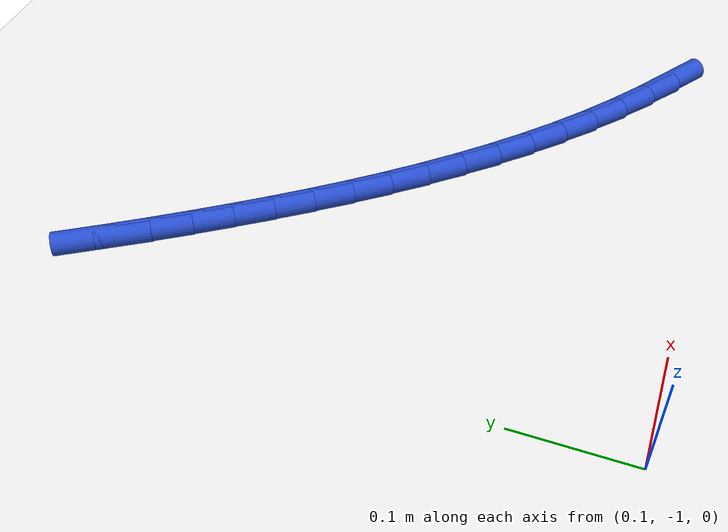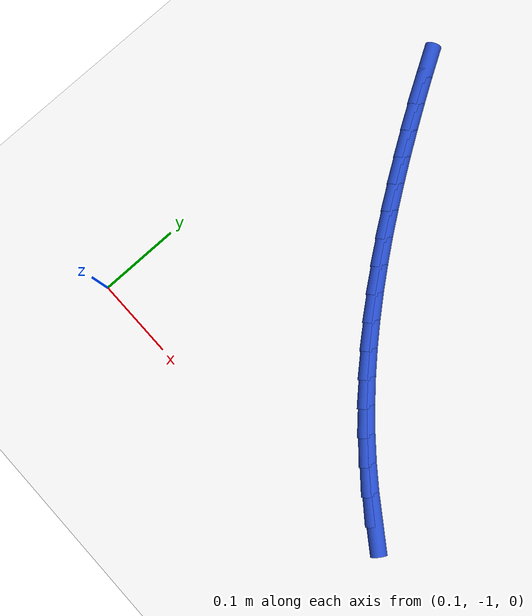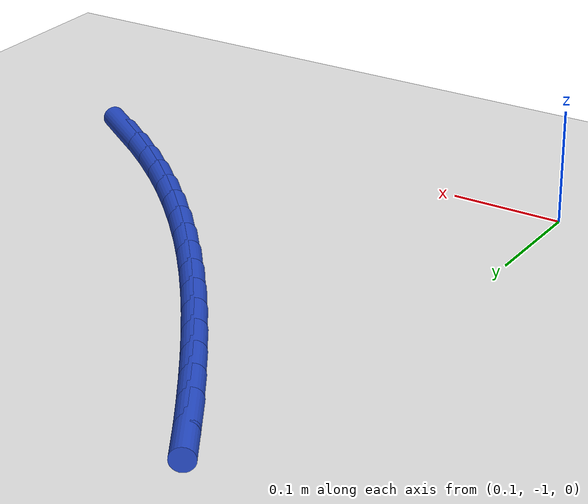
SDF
<sdf version="1.6">
 <world name="default">
  <model name="ground_plane">
   <static>1</static>
   <link name="link">
    <collision name="collision">
     <geometry><plane><normal>0 0 1</normal><size>100 100</size></plane></geometry>
     <surface><friction><ode><mu>100</mu><mu2>50</mu2></ode></friction></surface>
    </collision>
    <visual name="visual">
     <cast_shadows>0</cast_shadows>
     <geometry><plane><normal>0 0 1</normal><size>100 100</size></plane></geometry>
     <material>
      <script><uri>file://media/materials/scripts/gazebo.material</uri><name>Gazebo/WhiteGlow</name></script>
     </material>
    </visual>
   </link>
  </model>
  <model name="line">
   <link name="link_167">
    <pose>0.5161914404203446 -0.9473304684202944 0.01 0 1.57 -0.6106159458419365</pose>
    <collision name="collision">
     <geometry><cylinder><radius>0.01</radius><length>0.08</length></cylinder></geometry>
    </collision>
    <visual name="visual">
     <material>
      <script><name>Gazebo/Blue</name><uri>file://media/materials/scripts/gazebo.material</uri></script>
     </material>
     <geometry><cylinder><radius>0.01</radius><length>0.08</length></cylinder></geometry>
    </visual>
   </link>
   <link name="link_168">
    <pose>0.4881655486184175 -0.9277169380233509 0.01 0 1.57 -0.6525035542069241</pose>
    <collision name="collision">
     <geometry><cylinder><radius>0.01</radius><length>0.08</length></cylinder></geometry>
    </collision>
    <visual name="visual">
     <material>
      <script><name>Gazebo/Blue</name><uri>file://media/materials/scripts/gazebo.material</uri></script>
     </material>
     <geometry><cylinder><radius>0.01</radius><length>0.08</length></cylinder></geometry>
    </visual>
   </link>
   <link name="link_169">
    <pose>0.4610885658063062 -0.9070257278776711 0.01 0 1.57 -0.6933289847337448</pose>
    <collision name="collision">
     <geometry><cylinder><radius>0.01</radius><length>0.08</length></cylinder></geometry>
    </collision>
    <visual name="visual">
     <material>
      <script><name>Gazebo/Blue</name><uri>file://media/materials/scripts/gazebo.material</uri></script>
     </material>
     <geometry><cylinder><radius>0.01</radius><length>0.08</length></cylinder></geometry>
    </visual>
   </link>
   <link name="link_170">
    <pose>0.4350075236915597 -0.8853537337434955 0.01 0 1.57 -0.7322325887300116</pose>
    <collision name="collision">
     <geometry><cylinder><radius>0.01</radius><length>0.08</length></cylinder></geometry>
    </collision>
    <visual name="visual">
     <material>
      <script><name>Gazebo/Blue</name><uri>file://media/materials/scripts/gazebo.material</uri></script>
     </material>
     <geometry><cylinder><radius>0.01</radius><length>0.08</length></cylinder></geometry>
    </visual>
   </link>
   <link name="link_171">
    <pose>0.40988093547775684 -0.8627662826564215 0.01 0 1.57 -0.7689182639344929</pose>
    <collision name="collision">
     <geometry><cylinder><radius>0.01</radius><length>0.08</length></cylinder></geometry>
    </collision>
    <visual name="visual">
     <material>
      <script><name>Gazebo/Blue</name><uri>file://media/materials/scripts/gazebo.material</uri></script>
     </material>
     <geometry><cylinder><radius>0.01</radius><length>0.08</length></cylinder></geometry>
    </visual>
   </link>
   <link name="link_172">
    <pose>0.3856523096740088 -0.8393233504650431 0.01 0 1.57 -0.803270737311745</pose>
    <collision name="collision">
     <geometry><cylinder><radius>0.01</radius><length>0.08</length></cylinder></geometry>
    </collision>
    <visual name="visual">
     <material>
      <script><name>Gazebo/Blue</name><uri>file://media/materials/scripts/gazebo.material</uri></script>
     </material>
     <geometry><cylinder><radius>0.01</radius><length>0.08</length></cylinder></geometry>
    </visual>
   </link>
   <link name="link_173">
    <pose>0.3622651547894271 -0.8150849130179542 0.01 0 1.57 -0.8352094628406851</pose>
    <collision name="collision">
     <geometry><cylinder><radius>0.01</radius><length>0.08</length></cylinder></geometry>
    </collision>
    <visual name="visual">
     <material>
      <script><name>Gazebo/Blue</name><uri>file://media/materials/scripts/gazebo.material</uri></script>
     </material>
     <geometry><cylinder><radius>0.01</radius><length>0.08</length></cylinder></geometry>
    </visual>
   </link>
   <link name="link_174">
    <pose>0.339662979333123 -0.7901109461637487 0.01 0 1.57 -0.8646840071599043</pose>
    <collision name="collision">
     <geometry><cylinder><radius>0.01</radius><length>0.08</length></cylinder></geometry>
    </collision>
    <visual name="visual">
     <material>
      <script><name>Gazebo/Blue</name><uri>file://media/materials/scripts/gazebo.material</uri></script>
     </material>
     <geometry><cylinder><radius>0.01</radius><length>0.08</length></cylinder></geometry>
    </visual>
   </link>
   <link name="link_175">
    <pose>0.317789291814208 -0.7644614257510203 0.01 0 1.57 -0.8916689185564614</pose>
    <collision name="collision">
     <geometry><cylinder><radius>0.01</radius><length>0.08</length></cylinder></geometry>
    </collision>
    <visual name="visual">
     <material>
      <script><name>Gazebo/Blue</name><uri>file://media/materials/scripts/gazebo.material</uri></script>
     </material>
     <geometry><cylinder><radius>0.01</radius><length>0.08</length></cylinder></geometry>
    </visual>
   </link>
   <link name="link_176">
    <pose>0.29658760074179336 -0.7381963276283633 0.01 0 1.57 -0.9161584955981797</pose>
    <collision name="collision">
     <geometry><cylinder><radius>0.01</radius><length>0.08</length></cylinder></geometry>
    </collision>
    <visual name="visual">
     <material>
      <script><name>Gazebo/Blue</name><uri>file://media/materials/scripts/gazebo.material</uri></script>
     </material>
     <geometry><cylinder><radius>0.01</radius><length>0.08</length></cylinder></geometry>
    </visual>
   </link>
   <link name="link_177">
    <pose>0.27600141462499056 -0.7113756276443713 0.01 0 1.57 -0.9381617635049271</pose>
    <collision name="collision">
     <geometry><cylinder><radius>0.01</radius><length>0.08</length></cylinder></geometry>
    </collision>
    <visual name="visual">
     <material>
      <script><name>Gazebo/Blue</name><uri>file://media/materials/scripts/gazebo.material</uri></script>
     </material>
     <geometry><cylinder><radius>0.01</radius><length>0.08</length></cylinder></geometry>
    </visual>
   </link>
   <link name="link_178">
    <pose>0.25597424197291097 -0.6840593016476386 0.01 0 1.57 -0.9576978610971411</pose>
    <collision name="collision">
     <geometry><cylinder><radius>0.01</radius><length>0.08</length></cylinder></geometry>
    </collision>
    <visual name="visual">
     <material>
      <script><name>Gazebo/Blue</name><uri>file://media/materials/scripts/gazebo.material</uri></script>
     </material>
     <geometry><cylinder><radius>0.01</radius><length>0.08</length></cylinder></geometry>
    </visual>
   </link>
   <link name="link_179">
    <pose>0.23644959129466592 -0.6563073254867589 0.01 0 1.57 -0.9747919510083175</pose>
    <collision name="collision">
     <geometry><cylinder><radius>0.01</radius><length>0.08</length></cylinder></geometry>
    </collision>
    <visual name="visual">
     <material>
      <script><name>Gazebo/Blue</name><uri>file://media/materials/scripts/gazebo.material</uri></script>
     </material>
     <geometry><cylinder><radius>0.01</radius><length>0.08</length></cylinder></geometry>
    </visual>
   </link>
   <link name="link_180">
    <pose>0.21737097109936696 -0.6281796750103262 0.01 0 1.57 -0.9894716961461579</pose>
    <collision name="collision">
     <geometry><cylinder><radius>0.01</radius><length>0.08</length></cylinder></geometry>
    </collision>
    <visual name="visual">
     <material>
      <script><name>Gazebo/Blue</name><uri>file://media/materials/scripts/gazebo.material</uri></script>
     </material>
     <geometry><cylinder><radius>0.01</radius><length>0.08</length></cylinder></geometry>
    </visual>
   </link>
   <link name="link_181">
    <pose>0.19868188989612529 -0.5997363260669346 0.01 0 1.57 -1.0019443135630672</pose>
    <collision name="collision">
     <geometry><cylinder><radius>0.01</radius><length>0.08</length></cylinder></geometry>
    </collision>
    <visual name="visual">
     <material>
      <script><name>Gazebo/Blue</name><uri>file://media/materials/scripts/gazebo.material</uri></script>
     </material>
     <geometry><cylinder><radius>0.01</radius><length>0.08</length></cylinder></geometry>
    </visual>
   </link>
   <link name="link_182">
    <pose>0.18033150706234596 -0.5710347079856113 0.01 0 1.57 -1.0151268886032834</pose>
    <collision name="collision">
     <geometry><cylinder><radius>0.01</radius><length>0.08</length></cylinder></geometry>
    </collision>
    <visual name="visual">
     <material>
      <script><name>Gazebo/Blue</name><uri>file://media/materials/scripts/gazebo.material</uri></script>
     </material>
     <geometry><cylinder><radius>0.01</radius><length>0.08</length></cylinder></geometry>
    </visual>
   </link>
   <link name="link_183">
    <pose>0.16235964562556027 -0.542091393231086 0.01 0 1.57 -1.0313936131567243</pose>
    <collision name="collision">
     <geometry><cylinder><radius>0.01</radius><length>0.08</length></cylinder></geometry>
    </collision>
    <visual name="visual">
     <material>
      <script><name>Gazebo/Blue</name><uri>file://media/materials/scripts/gazebo.material</uri></script>
     </material>
     <geometry><cylinder><radius>0.01</radius><length>0.08</length></cylinder></geometry>
    </visual>
   </link>
  </model>
 </world>
</sdf>
